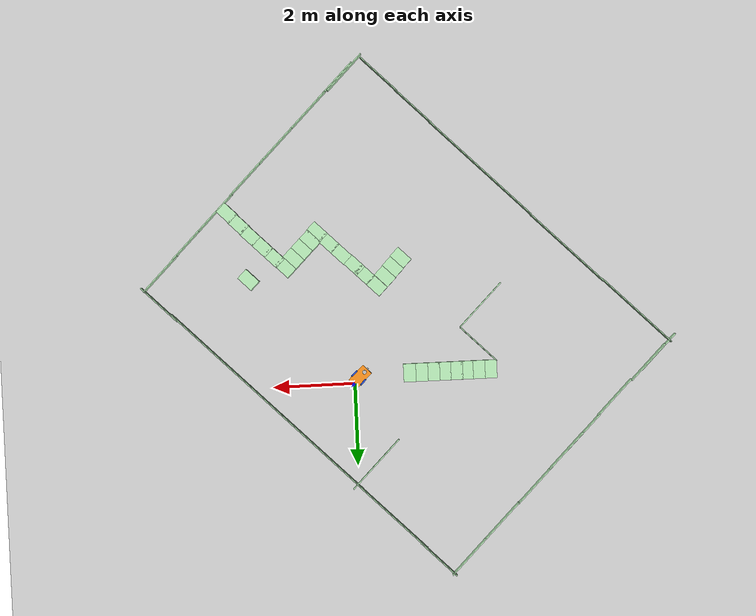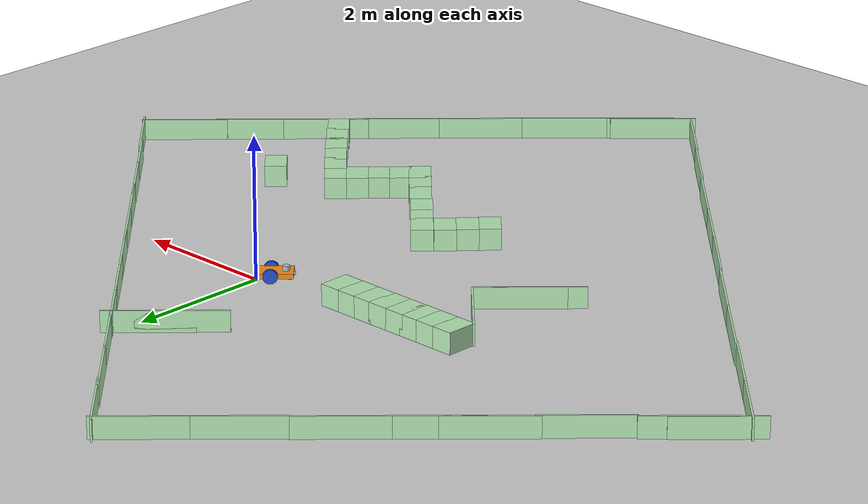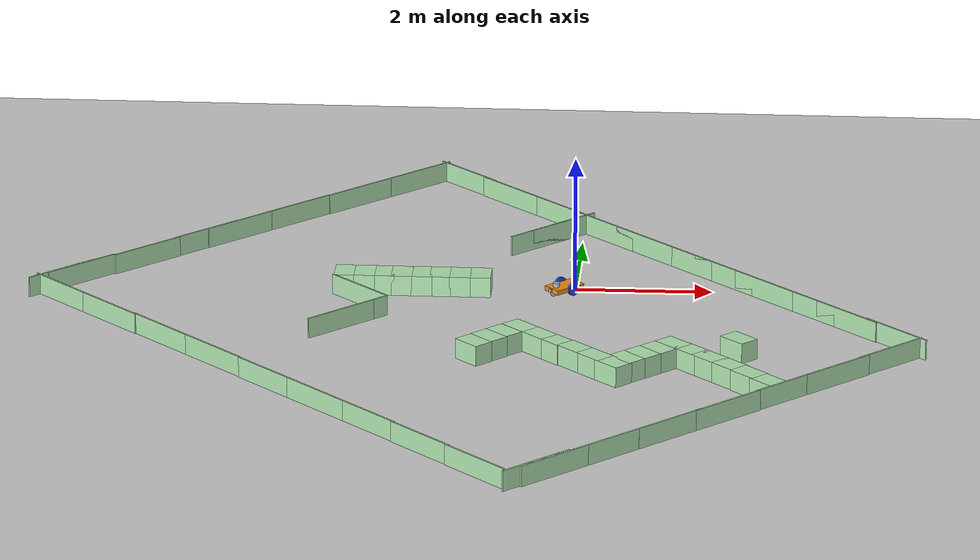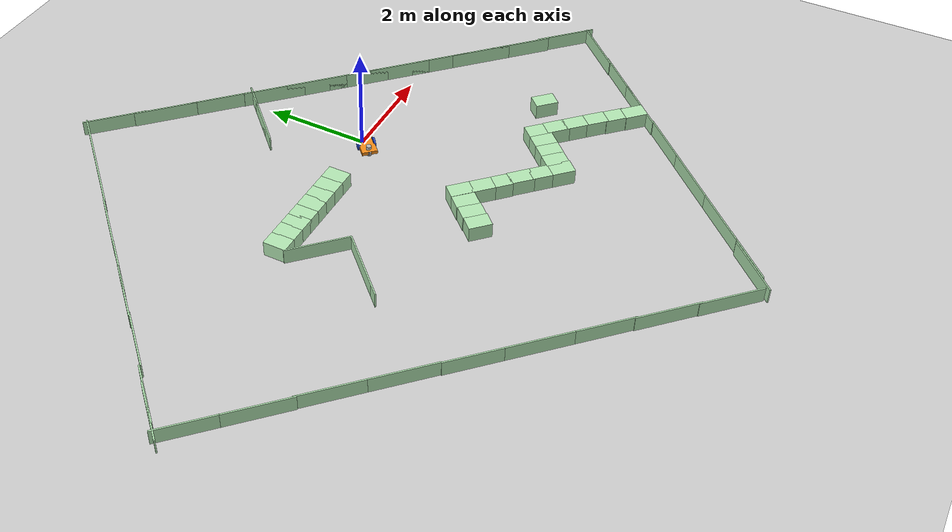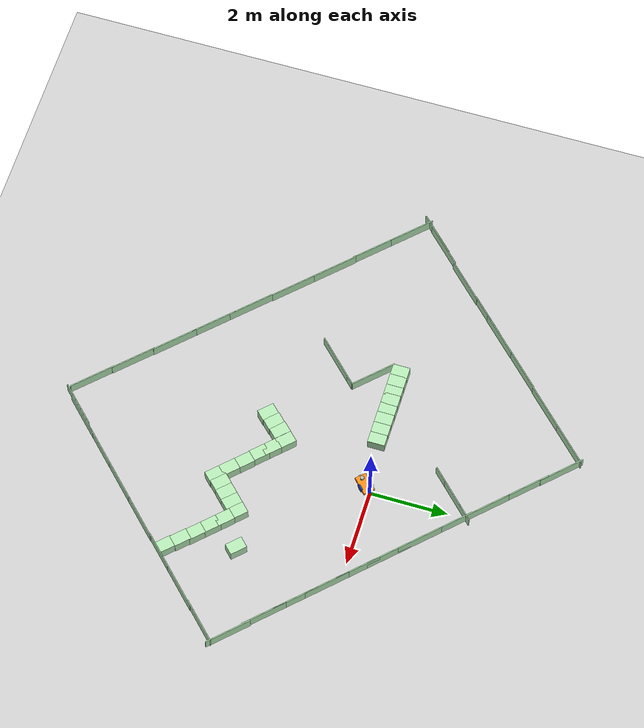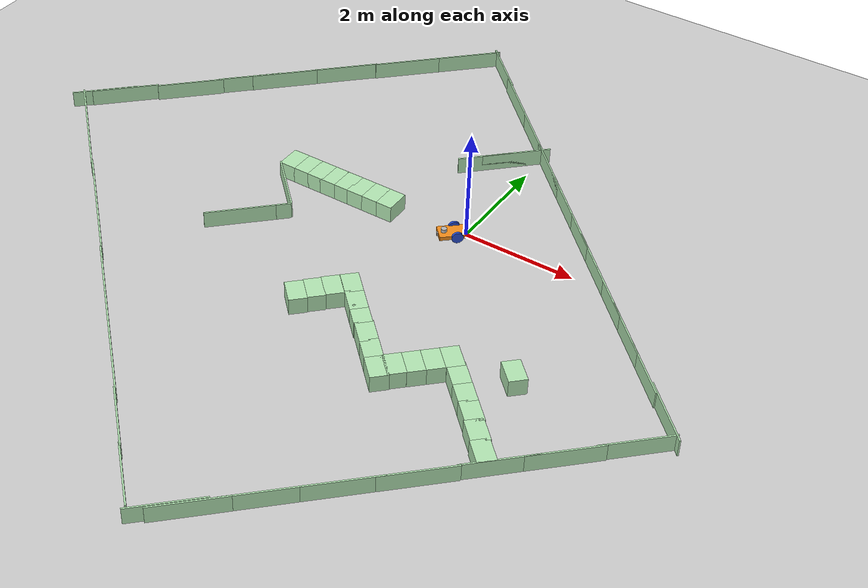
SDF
<sdf version="1.6">
 <world name="default">
  <scene><ambient>0.5 0.5 0.5 1</ambient><background>0.5 0.5 0.5 1</background><shadows>0</shadows></scene>
  <physics name="default_physics" default="0" type="ode">
   <ode>
    <solver>
     <type>quick</type>
     <iters>10</iters>
     <sor>1.3</sor>
     <use_dynamic_moi_rescaling>0</use_dynamic_moi_rescaling>
    </solver>
    <constraints>
     <cfm>0</cfm>
     <erp>0.2</erp>
     <contact_max_correcting_vel>100</contact_max_correcting_vel>
     <contact_surface_layer>0.001</contact_surface_layer>
    </constraints>
   </ode>
   <real_time_update_rate>1000</real_time_update_rate>
   <max_step_size>0.001</max_step_size>
   <real_time_factor>1</real_time_factor>
  </physics>
  <light name="directional_light_1" type="directional">
   <cast_shadows>0</cast_shadows>
   <pose>0 0 30 0.1 0.1 0</pose>
   <diffuse>1 1 1 1</diffuse>
   <specular>0.1 0.1 0.1 1</specular>
   <attenuation><range>300</range></attenuation>
   <direction>0.1 0.1 -1</direction>
  </light>
  <model name="ground_plane">
   <static>1</static>
   <link name="link">
    <collision name="collision">
     <geometry><plane><normal>0 0 1</normal><size>100 100</size></plane></geometry>
     <surface><friction><ode><mu>100</mu><mu2>50</mu2></ode></friction></surface>
    </collision>
    <visual name="visual">
     <cast_shadows>0</cast_shadows>
     <geometry><plane><normal>0 0 1</normal><size>100 100</size></plane></geometry>
     <material>
      <script><uri>file://media/materials/scripts/gazebo.material</uri><name>Gazebo/Grey</name></script>
     </material>
    </visual>
   </link>
  </model>
  <model name="wall_1">
   <pose>2.82826 -6.85801 0 0 -0 0</pose>
   <static>1</static>
   <link name="wall_1_link">
    <pose>-3.78491 -0.73691 0.15 0 -0 0.785398</pose>
    <collision name="wall_1_collision"><geometry><box><size>0.0254 1.2192 0.3</size></box></geometry></collision>
    <visual name="wall_1_visual">
     <geometry><box><size>0.0254 1.2192 0.3</size></box></geometry>
     <material>
      <ambient>0.7 0.9 0.7 1</ambient>
      <diffuse>0.7 0.9 0.7 1</diffuse>
      <specular>0.1 0.1 0.1 1</specular>
      <emissive>0 0 0 0</emissive>
     </material>
    </visual>
   </link>
  </model>
  <model name="wall_2">
   <pose>0.99822 6.04473 0 0 -0 0</pose>
   <static>1</static>
   <link name="wall_2_link">
    <pose>-2.87051 -1.65131 0.15 0 -0 0.785398</pose>
    <collision name="wall_2_collision"><geometry><box><size>0.0254 1.2192 0.3</size></box></geometry></collision>
    <visual name="wall_2_visual">
     <geometry><box><size>0.0254 1.2192 0.3</size></box></geometry>
     <material>
      <ambient>0.7 0.9 0.7 1</ambient>
      <diffuse>0.7 0.9 0.7 1</diffuse>
      <specular>0.1 0.1 0.1 1</specular>
      <emissive>0 0 0 0</emissive>
     </material>
    </visual>
   </link>
  </model>
  <model name="wall_3">
   <pose>1.07216 5.95222 0 0 -0 0</pose>
   <static>1</static>
   <link name="wall_3_link">
    <pose>-2.26091 -2.26091 0.15 0 -0 0.785398</pose>
    <collision name="wall_3_collision"><geometry><box><size>0.0254 1.2192 0.3</size></box></geometry></collision>
    <visual name="wall_3_visual">
     <geometry><box><size>0.0254 1.2192 0.3</size></box></geometry>
     <material>
      <ambient>0.7 0.9 0.7 1</ambient>
      <diffuse>0.7 0.9 0.7 1</diffuse>
      <specular>0.1 0.1 0.1 1</specular>
      <emissive>0 0 0 0</emissive>
     </material>
    </visual>
   </link>
  </model>
  <model name="wall_4">
   <pose>1.25702 5.76744 0 0 -0 0</pose>
   <static>1</static>
   <link name="wall_4_link">
    <pose>-1.65131 -2.87051 0.15 0 -0 0.785398</pose>
    <collision name="wall_4_collision"><geometry><box><size>0.0254 1.2192 0.3</size></box></geometry></collision>
    <visual name="wall_4_visual">
     <geometry><box><size>0.0254 1.2192 0.3</size></box></geometry>
     <material>
      <ambient>0.7 0.9 0.7 1</ambient>
      <diffuse>0.7 0.9 0.7 1</diffuse>
      <specular>0.1 0.1 0.1 1</specular>
      <emissive>0 0 0 0</emissive>
     </material>
    </visual>
   </link>
  </model>
  <model name="wall_5">
   <pose>-3.4383 5.67497 0 0 -0 0</pose>
   <static>1</static>
   <link name="wall_5_link">
    <pose>-1.6941 -3.7923 0.15 0 0 -0.785398</pose>
    <collision name="wall_5_collision"><geometry><box><size>0.0254 1.2192 0.3</size></box></geometry></collision>
    <visual name="wall_5_visual">
     <geometry><box><size>0.0254 1.2192 0.3</size></box></geometry>
     <material>
      <ambient>0.7 0.9 0.7 1</ambient>
      <diffuse>0.7 0.9 0.7 1</diffuse>
      <specular>0.1 0.1 0.1 1</specular>
      <emissive>0 0 0 0</emissive>
     </material>
    </visual>
   </link>
  </model>
  <model name="wall_6">
   <pose>6.22957 -4.01132 0 0 -0 0</pose>
   <static>1</static>
   <link name="wall_6_link">
    <pose>-1.524 1.8288 0.15 0 -0 0.785398</pose>
    <collision name="wall_6_collision"><geometry><box><size>0.0254 1.2192 0.3</size></box></geometry></collision>
    <visual name="wall_6_visual">
     <geometry><box><size>0.0254 1.2192 0.3</size></box></geometry>
     <material>
      <ambient>0.7 0.9 0.7 1</ambient>
      <diffuse>0.7 0.9 0.7 1</diffuse>
      <specular>0.1 0.1 0.1 1</specular>
      <emissive>0 0 0 0</emissive>
     </material>
    </visual>
   </link>
  </model>
  <model name="wall_7">
   <static>1</static>
   <link name="wall_7_link">
    <pose>0.332269 2.16107 0.15 0 -0 0.785398</pose>
    <collision name="wall_7_collision"><geometry><box><size>0.0254 1.2192 0.3</size></box></geometry></collision>
    <visual name="wall_7_visual">
     <geometry><box><size>0.0254 1.2192 0.3</size></box></geometry>
     <material>
      <ambient>0.7 0.9 0.7 1</ambient>
      <diffuse>0.7 0.9 0.7 1</diffuse>
      <specular>0.1 0.1 0.1 1</specular>
      <emissive>0 0 0 0</emissive>
     </material>
    </visual>
   </link>
  </model>
  <model name="wall_8">
   <static>1</static>
   <link name="wall_8_link">
    <pose>0.941869 1.55147 0.15 0 -0 0.785398</pose>
    <collision name="wall_8_collision"><geometry><box><size>0.0254 1.2192 0.3</size></box></geometry></collision>
    <visual name="wall_8_visual">
     <geometry><box><size>0.0254 1.2192 0.3</size></box></geometry>
     <material>
      <ambient>0.7 0.9 0.7 1</ambient>
      <diffuse>0.7 0.9 0.7 1</diffuse>
      <specular>0.1 0.1 0.1 1</specular>
      <emissive>0 0 0 0</emissive>
     </material>
    </visual>
   </link>
  </model>
  <model name="wall_9">
   <static>1</static>
   <link name="wall_9_link">
    <pose>1.55147 0.941869 0.15 0 -0 0.785398</pose>
    <collision name="wall_9_collision"><geometry><box><size>0.0254 1.2192 0.3</size></box></geometry></collision>
    <visual name="wall_9_visual">
     <geometry><box><size>0.0254 1.2192 0.3</size></box></geometry>
     <material>
      <ambient>0.7 0.9 0.7 1</ambient>
      <diffuse>0.7 0.9 0.7 1</diffuse>
      <specular>0.1 0.1 0.1 1</specular>
      <emissive>0 0 0 0</emissive>
     </material>
    </visual>
   </link>
  </model>
  <model name="wall_10">
   <static>1</static>
   <link name="wall_10_link">
    <pose>2.16107 0.332269 0.15 0 -0 0.785398</pose>
    <collision name="wall_10_collision"><geometry><box><size>0.0254 1.2192 0.3</size></box></geometry></collision>
    <visual name="wall_10_visual">
     <geometry><box><size>0.0254 1.2192 0.3</size></box></geometry>
     <material>
      <ambient>0.7 0.9 0.7 1</ambient>
      <diffuse>0.7 0.9 0.7 1</diffuse>
      <specular>0.1 0.1 0.1 1</specular>
      <emissive>0 0 0 0</emissive>
     </material>
    </visual>
   </link>
  </model>
  <model name="wall_11">
   <static>1</static>
   <link name="wall_11_link">
    <pose>2.77067 -0.277331 0.15 0 -0 0.785398</pose>
    <collision name="wall_11_collision"><geometry><box><size>0.0254 1.2192 0.3</size></box></geometry></collision>
    <visual name="wall_11_visual">
     <geometry><box><size>0.0254 1.2192 0.3</size></box></geometry>
     <material>
      <ambient>0.7 0.9 0.7 1</ambient>
      <diffuse>0.7 0.9 0.7 1</diffuse>
      <specular>0.1 0.1 0.1 1</specular>
      <emissive>0 0 0 0</emissive>
     </material>
    </visual>
   </link>
  </model>
  <model name="wall_12">
   <static>1</static>
   <link name="wall_12_link">
    <pose>3.38027 -0.886931 0.15 0 -0 0.785398</pose>
    <collision name="wall_12_collision"><geometry><box><size>0.0254 1.2192 0.3</size></box></geometry></collision>
    <visual name="wall_12_visual">
     <geometry><box><size>0.0254 1.2192 0.3</size></box></geometry>
     <material>
      <ambient>0.7 0.9 0.7 1</ambient>
      <diffuse>0.7 0.9 0.7 1</diffuse>
      <specular>0.1 0.1 0.1 1</specular>
      <emissive>0 0 0 0</emissive>
     </material>
    </visual>
   </link>
  </model>
  <model name="wall_13">
   <static>1</static>
   <link name="wall_13_link">
    <pose>3.98987 -1.49653 0.15 0 -0 0.785398</pose>
    <collision name="wall_13_collision"><geometry><box><size>0.0254 1.2192 0.3</size></box></geometry></collision>
    <visual name="wall_13_visual">
     <geometry><box><size>0.0254 1.2192 0.3</size></box></geometry>
     <material>
      <ambient>0.7 0.9 0.7 1</ambient>
      <diffuse>0.7 0.9 0.7 1</diffuse>
      <specular>0.1 0.1 0.1 1</specular>
      <emissive>0 0 0 0</emissive>
     </material>
    </visual>
   </link>
  </model>
  <model name="wall_14">
   <pose>1.12166 -1.01977 0 0 -0 0</pose>
   <static>1</static>
   <link name="wall_14_link">
    <pose>-0.312194 -5.78381 0.15 0 0 -0.785398</pose>
    <collision name="wall_14_collision"><geometry><box><size>0.0254 1.2192 0.3</size></box></geometry></collision>
    <visual name="wall_14_visual">
     <geometry><box><size>0.0254 1.2192 0.3</size></box></geometry>
     <material>
      <ambient>0.7 0.9 0.7 1</ambient>
      <diffuse>0.7 0.9 0.7 1</diffuse>
      <specular>0.1 0.1 0.1 1</specular>
      <emissive>0 0 0 0</emissive>
     </material>
    </visual>
   </link>
  </model>
  <model name="wall_15">
   <pose>2.10733 -0.03697 0 0 -0 0</pose>
   <static>1</static>
   <link name="wall_15_link">
    <pose>0.297406 -5.17421 0.15 0 0 -0.785398</pose>
    <collision name="wall_15_collision"><geometry><box><size>0.0254 1.2192 0.3</size></box></geometry></collision>
    <visual name="wall_15_visual">
     <geometry><box><size>0.0254 1.2192 0.3</size></box></geometry>
     <material>
      <ambient>0.7 0.9 0.7 1</ambient>
      <diffuse>0.7 0.9 0.7 1</diffuse>
      <specular>0.1 0.1 0.1 1</specular>
      <emissive>0 0 0 0</emissive>
     </material>
    </visual>
   </link>
  </model>
  <model name="wall_16">
   <pose>2.31067 0.18486 0 0 -0 0</pose>
   <static>1</static>
   <link name="wall_16_link">
    <pose>0.907006 -4.56461 0.15 0 0 -0.785398</pose>
    <collision name="wall_16_collision"><geometry><box><size>0.0254 1.2192 0.3</size></box></geometry></collision>
    <visual name="wall_16_visual">
     <geometry><box><size>0.0254 1.2192 0.3</size></box></geometry>
     <material>
      <ambient>0.7 0.9 0.7 1</ambient>
      <diffuse>0.7 0.9 0.7 1</diffuse>
      <specular>0.1 0.1 0.1 1</specular>
      <emissive>0 0 0 0</emissive>
     </material>
    </visual>
   </link>
  </model>
  <model name="wall_17">
   <pose>2.38461 0.25879 0 0 -0 0</pose>
   <static>1</static>
   <link name="wall_17_link">
    <pose>1.51661 -3.95501 0.15 0 0 -0.785398</pose>
    <collision name="wall_17_collision"><geometry><box><size>0.0254 1.2192 0.3</size></box></geometry></collision>
    <visual name="wall_17_visual">
     <geometry><box><size>0.0254 1.2192 0.3</size></box></geometry>
     <material>
      <ambient>0.7 0.9 0.7 1</ambient>
      <diffuse>0.7 0.9 0.7 1</diffuse>
      <specular>0.1 0.1 0.1 1</specular>
      <emissive>0 0 0 0</emissive>
     </material>
    </visual>
   </link>
  </model>
  <model name="wall_18">
   <pose>-0.47618 -2.61811 0 0 -0 0</pose>
   <static>1</static>
   <link name="wall_18_link">
    <pose>2.12621 -3.34541 0.15 0 0 -0.785398</pose>
    <collision name="wall_18_collision"><geometry><box><size>0.0254 1.2192 0.3</size></box></geometry></collision>
    <visual name="wall_18_visual">
     <geometry><box><size>0.0254 1.2192 0.3</size></box></geometry>
     <material>
      <ambient>0.7 0.9 0.7 1</ambient>
      <diffuse>0.7 0.9 0.7 1</diffuse>
      <specular>0.1 0.1 0.1 1</specular>
      <emissive>0 0 0 0</emissive>
     </material>
    </visual>
   </link>
  </model>
  <model name="wall_19">
   <pose>1.90401 -0.20333 0 0 -0 0</pose>
   <static>1</static>
   <link name="wall_19_link">
    <pose>2.73581 -2.73581 0.15 0 0 -0.785398</pose>
    <collision name="wall_19_collision"><geometry><box><size>0.0254 1.2192 0.3</size></box></geometry></collision>
    <visual name="wall_19_visual">
     <geometry><box><size>0.0254 1.2192 0.3</size></box></geometry>
     <material>
      <ambient>0.7 0.9 0.7 1</ambient>
      <diffuse>0.7 0.9 0.7 1</diffuse>
      <specular>0.1 0.1 0.1 1</specular>
      <emissive>0 0 0 0</emissive>
     </material>
    </visual>
   </link>
  </model>
  <model name="wall_20">
   <pose>-8.92843 3.56765 0 0 -0 0</pose>
   <static>1</static>
   <link name="wall_20_link">
    <pose>3.34541 -2.12621 0.15 0 0 -0.785398</pose>
    <collision name="wall_20_collision"><geometry><box><size>0.0254 1.2192 0.3</size></box></geometry></collision>
    <visual name="wall_20_visual">
     <geometry><box><size>0.0254 1.2192 0.3</size></box></geometry>
     <material>
      <ambient>0.7 0.9 0.7 1</ambient>
      <diffuse>0.7 0.9 0.7 1</diffuse>
      <specular>0.1 0.1 0.1 1</specular>
      <emissive>0 0 0 0</emissive>
     </material>
    </visual>
   </link>
  </model>
  <model name="wall_21">
   <pose>-10.3334 2.14421 0 0 -0 0</pose>
   <static>1</static>
   <link name="wall_21_link">
    <pose>3.95501 -1.51661 0.15 0 0 -0.785398</pose>
    <collision name="wall_21_collision"><geometry><box><size>0.0254 1.2192 0.3</size></box></geometry></collision>
    <visual name="wall_21_visual">
     <geometry><box><size>0.0254 1.2192 0.3</size></box></geometry>
     <material>
      <ambient>0.7 0.9 0.7 1</ambient>
      <diffuse>0.7 0.9 0.7 1</diffuse>
      <specular>0.1 0.1 0.1 1</specular>
      <emissive>0 0 0 0</emissive>
     </material>
    </visual>
   </link>
  </model>
  <model name="wall_22">
   <static>1</static>
   <link name="wall_22_link">
    <pose>-0.29582 2.14258 0.15 0 0 -0.785398</pose>
    <collision name="wall_22_collision"><geometry><box><size>0.0254 1.2192 0.3</size></box></geometry></collision>
    <visual name="wall_22_visual">
     <geometry><box><size>0.0254 1.2192 0.3</size></box></geometry>
     <material>
      <ambient>0.7 0.9 0.7 1</ambient>
      <diffuse>0.7 0.9 0.7 1</diffuse>
      <specular>0.1 0.1 0.1 1</specular>
      <emissive>0 0 0 0</emissive>
     </material>
    </visual>
   </link>
  </model>
  <model name="wall_23">
   <static>1</static>
   <link name="wall_23_link">
    <pose>-0.60062 1.83778 0.15 0 0 -0.785398</pose>
    <collision name="wall_23_collision"><geometry><box><size>0.0254 1.2192 0.3</size></box></geometry></collision>
    <visual name="wall_23_visual">
     <geometry><box><size>0.0254 1.2192 0.3</size></box></geometry>
     <material>
      <ambient>0.7 0.9 0.7 1</ambient>
      <diffuse>0.7 0.9 0.7 1</diffuse>
      <specular>0.1 0.1 0.1 1</specular>
      <emissive>0 0 0 0</emissive>
     </material>
    </visual>
   </link>
  </model>
  <model name="wall_24">
   <pose>-0.79487 2.5325 0 0 -0 0</pose>
   <static>1</static>
   <link name="wall_24_link">
    <pose>-1.83778 1.83778 0.15 0 0 -0.785398</pose>
    <collision name="wall_24_collision"><geometry><box><size>0.0254 1.2192 0.3</size></box></geometry></collision>
    <visual name="wall_24_visual">
     <geometry><box><size>0.0254 1.2192 0.3</size></box></geometry>
     <material>
      <ambient>0.7 0.9 0.7 1</ambient>
      <diffuse>0.7 0.9 0.7 1</diffuse>
      <specular>0.1 0.1 0.1 1</specular>
      <emissive>0 0 0 0</emissive>
     </material>
    </visual>
   </link>
  </model>
  <model name="wall_25">
   <pose>-0.72093 2.60641 0 0 -0 0</pose>
   <static>1</static>
   <link name="wall_25_link">
    <pose>-2.75218 0.92338 0.15 0 0 -0.785398</pose>
    <collision name="wall_25_collision"><geometry><box><size>0.0254 1.2192 0.3</size></box></geometry></collision>
    <visual name="wall_25_visual">
     <geometry><box><size>0.0254 1.2192 0.3</size></box></geometry>
     <material>
      <ambient>0.7 0.9 0.7 1</ambient>
      <diffuse>0.7 0.9 0.7 1</diffuse>
      <specular>0.1 0.1 0.1 1</specular>
      <emissive>0 0 0 0</emissive>
     </material>
    </visual>
   </link>
  </model>
  <model name="wall_26">
   <pose>-0.66548 2.68039 0 0 -0 0</pose>
   <static>1</static>
   <link name="wall_26_link">
    <pose>-3.66658 0.00898 0.15 0 0 -0.785398</pose>
    <collision name="wall_26_collision"><geometry><box><size>0.0254 1.2192 0.3</size></box></geometry></collision>
    <visual name="wall_26_visual">
     <geometry><box><size>0.0254 1.2192 0.3</size></box></geometry>
     <material>
      <ambient>0.7 0.9 0.7 1</ambient>
      <diffuse>0.7 0.9 0.7 1</diffuse>
      <specular>0.1 0.1 0.1 1</specular>
      <emissive>0 0 0 0</emissive>
     </material>
    </visual>
   </link>
  </model>
  <model name="box_6">
   <static>1</static>
   <link name="box_6_link">
    <pose>2.47538 -2.6909 0.15 0 -0 0.785398</pose>
    <collision name="box_6_collision"><geometry><box><size>0.3048 0.4445 0.3</size></box></geometry></collision>
    <visual name="box_6_visual">
     <geometry><box><size>0.3048 0.4445 0.3</size></box></geometry>
     <material>
      <ambient>0.7 0.9 0.7 1</ambient>
      <diffuse>0.7 0.9 0.7 1</diffuse>
      <specular>0.1 0.1 0.1 1</specular>
      <emissive>0 0 0 0</emissive>
     </material>
    </visual>
   </link>
  </model>
  <model name="box_9">
   <static>1</static>
   <link name="box_9_link">
    <pose>-1.3716 -0.22225 0.15 0 -0 0</pose>
    <collision name="box_9_collision"><geometry><box><size>0.3048 0.4445 0.3</size></box></geometry></collision>
    <visual name="box_9_visual">
     <geometry><box><size>0.3048 0.4445 0.3</size></box></geometry>
     <material>
      <ambient>0.7 0.9 0.7 1</ambient>
      <diffuse>0.7 0.9 0.7 1</diffuse>
      <specular>0.1 0.1 0.1 1</specular>
      <emissive>0 0 0 0</emissive>
     </material>
    </visual>
   </link>
  </model>
  <gravity>0 0 -9.81</gravity>
  <magnetic_field>6e-06 2.3e-05 -4.2e-05</magnetic_field>
  <atmosphere type="adiabatic"/>
  <audio><device>default</device></audio>
  <spherical_coordinates>
   <surface_model>EARTH_WGS84</surface_model>
   <latitude_deg>0</latitude_deg>
   <longitude_deg>0</longitude_deg>
   <elevation>0</elevation>
   <heading_deg>0</heading_deg>
  </spherical_coordinates>
  <model name="m2wr">
   <link name="link_chassis">
    <inertial>
     <pose>0.025 0 0.091667 0 -0 0</pose>
     <mass>6.00001</mass>
     <inertia>
      <ixx>0.0616261</ixx>
      <ixy>0</ixy>
      <ixz>0.00625021</ixz>
      <iyy>0.147043</iyy>
      <iyz>0</iyz>
      <izz>0.14496</izz>
     </inertia>
    </inertial>
    <collision name="link_chassis_fixed_joint_lump__collision_chassis_collision">
     <geometry><box><size>0.5 0.3 0.07</size></box></geometry>
    </collision>
    <collision name="link_chassis_fixed_joint_lump__caster_front_collision_collision_1">
     <pose>0.35 0 -0.05 0 -0 0</pose>
     <geometry><sphere><radius>0.05</radius></sphere></geometry>
    </collision>
    <collision name="link_chassis_fixed_joint_lump__camera_link_collision_2">
     <pose>0.25 0 0 0 -0 0</pose>
     <geometry><box><size>0.05 0.05 0.05</size></box></geometry>
    </collision>
    <collision name="link_chassis_fixed_joint_lump__sensor_laser_collision_3">
     <pose>0.15 0 0.05 0 -0 0</pose>
     <geometry><cylinder><length>0.1</length><radius>0.05</radius></cylinder></geometry>
    </collision>
    <visual name="link_chassis_visual">
     <geometry><box><size>0.5 0.3 0.07</size></box></geometry>
     <material>
      <script><name>Gazebo/Orange</name><uri>file://media/materials/scripts/gazebo.material</uri></script>
     </material>
    </visual>
    <visual name="link_chassis_fixed_joint_lump__caster_front_visual_visual_1">
     <pose>0.2 0 -0.05 0 -0 0</pose>
     <geometry><sphere><radius>0.05</radius></sphere></geometry>
    </visual>
    <visual name="link_chassis_fixed_joint_lump__camera_link_visual_2">
     <pose>0.25 0 0 0 -0 0</pose>
     <geometry><box><size>0.05 0.05 0.05</size></box></geometry>
     <material><script><uri>__default__</uri><name>__default__</name></script></material>
    </visual>
    <visual name="link_chassis_fixed_joint_lump__sensor_laser_visual_3">
     <pose>0.15 0 0.05 0 -0 0</pose>
     <geometry><cylinder><length>0.1</length><radius>0.05</radius></cylinder></geometry>
     <material><script><uri>__default__</uri><name>__default__</name></script></material>
    </visual>
    <sensor name="camera1" type="depth">
     <update_rate>20</update_rate>
     <camera name="__default__">
      <horizontal_fov>1.0472</horizontal_fov>
      <image><width>640</width><height>480</height><format>R8G8B8</format></image>
      <clip><near>0.05</near><far>3</far></clip>
     </camera>
     <plugin name="camera_controller" filename="libgazebo_ros_openni_kinect.so">
      <baseline>0.2</baseline>
      <alwaysOn>1</alwaysOn>
      <updateRate>1.0</updateRate>
      <cameraName>camera1_ir</cameraName>
      <imageTopicName>/camera1/color/image_raw</imageTopicName>
      <cameraInfoTopicName>/camera1/color/camera_info</cameraInfoTopicName>
      <depthImageTopicName>/camera1/depth/image_raw</depthImageTopicName>
      <depthImageInfoTopicName>/camera1/depth/camera_info</depthImageInfoTopicName>
      <pointCloudTopicName>/camera1/depth/points</pointCloudTopicName>
      <frameName>camera_link</frameName>
      <pointCloudCutoff>0.5</pointCloudCutoff>
      <pointCloudCutoffMax>3.0</pointCloudCutoffMax>
      <distortionK1>0.00000001</distortionK1>
      <distortionK2>0.00000001</distortionK2>
      <distortionK3>0.00000001</distortionK3>
      <distortionT1>0.00000001</distortionT1>
      <distortionT2>0.00000001</distortionT2>
      <CxPrime>0</CxPrime>
      <Cx>0</Cx>
      <Cy>0</Cy>
      <focalLength>0</focalLength>
      <hackBaseline>0</hackBaseline>
      <robotNamespace>/</robotNamespace>
     </plugin>
     <pose>0.25 0 0 0 -0 0</pose>
    </sensor>
    <sensor name="head_hokuyo_sensor" type="ray">
     <visualize>0</visualize>
     <update_rate>20</update_rate>
     <ray>
      <scan>
       <horizontal>
        <samples>720</samples>
        <resolution>1</resolution>
        <min_angle>-3.14</min_angle>
        <max_angle>3.14</max_angle>
       </horizontal>
       <vertical><samples>1</samples><min_angle>0</min_angle><max_angle>0</max_angle></vertical>
      </scan>
      <range><min>0.1</min><max>10</max><resolution>0.01</resolution></range>
      <noise><type>gaussian</type><mean>0</mean><stddev>0.01</stddev></noise>
     </ray>
     <plugin name="gazebo_ros_head_hokuyo_controller" filename="libgazebo_ros_laser.so">
      <topicName>/m2wr/laser/scan</topicName>
      <frameName>sensor_laser</frameName>
      <robotNamespace>/</robotNamespace>
     </plugin>
     <pose>0.15 0 0.05 0 -0 0</pose>
    </sensor>
   </link>
   <link name="link_left_wheel">
    <pose>-0.05 -0.15 0 0 -0 0</pose>
    <inertial>
     <pose>0 0 0 -0 1.5707 1.5707</pose>
     <mass>0.2</mass>
     <inertia>
      <ixx>0.000526667</ixx>
      <ixy>0</ixy>
      <ixz>0</ixz>
      <iyy>0.000526667</iyy>
      <iyz>0</iyz>
      <izz>0.001</izz>
     </inertia>
    </inertial>
    <collision name="link_left_wheel_collision_collision">
     <pose>0 0 0 3.14159 1.57079 -1.57089</pose>
     <geometry><cylinder><length>0.04</length><radius>0.1</radius></cylinder></geometry>
    </collision>
    <visual name="link_left_wheel_visual_visual">
     <pose>0 0 0 3.14159 1.57079 -1.57089</pose>
     <geometry><cylinder><length>0.04</length><radius>0.1</radius></cylinder></geometry>
     <material>
      <script><name>Gazebo/Blue</name><uri>file://media/materials/scripts/gazebo.material</uri></script>
     </material>
    </visual>
   </link>
   <joint name="joint_left_wheel" type="revolute">
    <child>link_left_wheel</child>
    <parent>link_chassis</parent>
    <axis>
     <xyz>0 1 0</xyz>
     <limit><lower>-1e+16</lower><upper>1e+16</upper></limit>
     <dynamics><spring_reference>0</spring_reference><spring_stiffness>0</spring_stiffness></dynamics>
     <use_parent_model_frame>1</use_parent_model_frame>
    </axis>
   </joint>
   <link name="link_right_wheel">
    <pose>-0.05 0.15 0 0 -0 0</pose>
    <inertial>
     <pose>0 0 0 -0 1.5707 1.5707</pose>
     <mass>0.2</mass>
     <inertia>
      <ixx>0.000526667</ixx>
      <ixy>0</ixy>
      <ixz>0</ixz>
      <iyy>0.000526667</iyy>
      <iyz>0</iyz>
      <izz>0.001</izz>
     </inertia>
    </inertial>
    <collision name="link_right_wheel_collision_collision">
     <pose>0 0 0 3.14159 1.57079 -1.57089</pose>
     <geometry><cylinder><length>0.04</length><radius>0.1</radius></cylinder></geometry>
    </collision>
    <visual name="link_right_wheel_visual_visual">
     <pose>0 0 0 3.14159 1.57079 -1.57089</pose>
     <geometry><cylinder><length>0.04</length><radius>0.1</radius></cylinder></geometry>
     <material>
      <script><name>Gazebo/Blue</name><uri>file://media/materials/scripts/gazebo.material</uri></script>
     </material>
    </visual>
   </link>
   <joint name="joint_right_wheel" type="revolute">
    <child>link_right_wheel</child>
    <parent>link_chassis</parent>
    <axis>
     <xyz>0 1 0</xyz>
     <limit><lower>-1e+16</lower><upper>1e+16</upper></limit>
     <dynamics><spring_reference>0</spring_reference><spring_stiffness>0</spring_stiffness></dynamics>
     <use_parent_model_frame>1</use_parent_model_frame>
    </axis>
   </joint>
   <static>0</static>
   <plugin name="differential_drive_controller" filename="libgazebo_ros_diff_drive.so">
    <alwaysOn>1</alwaysOn>
    <updateRate>20</updateRate>
    <leftJoint>joint_left_wheel</leftJoint>
    <rightJoint>joint_right_wheel</rightJoint>
    <wheelSeparation>0.4</wheelSeparation>
    <wheelDiameter>0.2</wheelDiameter>
    <torque>0.1</torque>
    <commandTopic>cmd_vel</commandTopic>
    <odometryTopic>odom</odometryTopic>
    <odometryFrame>odom</odometryFrame>
    <robotBaseFrame>link_chassis</robotBaseFrame>
    <robotNamespace>/</robotNamespace>
   </plugin>
   <pose>-0.152687 -0.183987 0.099988 -2e-05 -0.002746 -2.38609</pose>
  </model>
  <model name="wall_1_clone">
   <static>1</static>
   <link name="wall_1_link">
    <pose>-3.78491 -0.73691 0.15 0 -0 0.785398</pose>
    <collision name="wall_1_collision"><geometry><box><size>0.0254 1.2192 0.3</size></box></geometry></collision>
    <visual name="wall_1_visual">
     <geometry><box><size>0.0254 1.2192 0.3</size></box></geometry>
     <material>
      <ambient>0.7 0.9 0.7 1</ambient>
      <diffuse>0.7 0.9 0.7 1</diffuse>
      <specular>0.1 0.1 0.1 1</specular>
      <emissive>0 0 0 0</emissive>
     </material>
    </visual>
   </link>
   <pose>2.02356 -6.03636 0 0 -0 0</pose>
  </model>
  <model name="wall_1_clone_0">
   <static>1</static>
   <link name="wall_1_link">
    <pose>-3.78491 -0.73691 0.15 0 -0 0.785398</pose>
    <collision name="wall_1_collision"><geometry><box><size>0.0254 1.2192 0.3</size></box></geometry></collision>
    <visual name="wall_1_visual">
     <geometry><box><size>0.0254 1.2192 0.3</size></box></geometry>
     <material>
      <ambient>0.7 0.9 0.7 1</ambient>
      <diffuse>0.7 0.9 0.7 1</diffuse>
      <specular>0.1 0.1 0.1 1</specular>
      <emissive>0 0 0 0</emissive>
     </material>
    </visual>
   </link>
   <pose>1.21021 -5.20447 0 0 -0 0</pose>
  </model>
  <model name="wall_1_clone_1">
   <static>1</static>
   <link name="wall_1_link">
    <pose>-3.78491 -0.73691 0.15 0 -0 0.785398</pose>
    <collision name="wall_1_collision"><geometry><box><size>0.0254 1.2192 0.3</size></box></geometry></collision>
    <visual name="wall_1_visual">
     <geometry><box><size>0.0254 1.2192 0.3</size></box></geometry>
     <material>
      <ambient>0.7 0.9 0.7 1</ambient>
      <diffuse>0.7 0.9 0.7 1</diffuse>
      <specular>0.1 0.1 0.1 1</specular>
      <emissive>0 0 0 0</emissive>
     </material>
    </visual>
   </link>
   <pose>0.43382 -4.42813 0 0 -0 0</pose>
  </model>
  <model name="wall_1_clone_2">
   <static>1</static>
   <link name="wall_1_link">
    <pose>-3.78491 -0.73691 0.15 0 -0 0.785398</pose>
    <collision name="wall_1_collision"><geometry><box><size>0.0254 1.2192 0.3</size></box></geometry></collision>
    <visual name="wall_1_visual">
     <geometry><box><size>0.0254 1.2192 0.3</size></box></geometry>
     <material>
      <ambient>0.7 0.9 0.7 1</ambient>
      <diffuse>0.7 0.9 0.7 1</diffuse>
      <specular>0.1 0.1 0.1 1</specular>
      <emissive>0 0 0 0</emissive>
     </material>
    </visual>
   </link>
   <pose>-0.32407 -3.66988 0 0 -0 0</pose>
  </model>
  <model name="wall_1_clone_3">
   <static>1</static>
   <link name="wall_1_link">
    <pose>-3.78491 -0.73691 0.15 0 -0 0.785398</pose>
    <collision name="wall_1_collision"><geometry><box><size>0.0254 1.2192 0.3</size></box></geometry></collision>
    <visual name="wall_1_visual">
     <geometry><box><size>0.0254 1.2192 0.3</size></box></geometry>
     <material>
      <ambient>0.7 0.9 0.7 1</ambient>
      <diffuse>0.7 0.9 0.7 1</diffuse>
      <specular>0.1 0.1 0.1 1</specular>
      <emissive>0 0 0 0</emissive>
     </material>
    </visual>
   </link>
   <pose>-1.17436 -2.8011 0 0 -0 0</pose>
  </model>
  <model name="wall_1_clone_4">
   <static>1</static>
   <link name="wall_1_link">
    <pose>-3.78491 -0.73691 0.15 0 -0 0.785398</pose>
    <collision name="wall_1_collision"><geometry><box><size>0.0254 1.2192 0.3</size></box></geometry></collision>
    <visual name="wall_1_visual">
     <geometry><box><size>0.0254 1.2192 0.3</size></box></geometry>
     <material>
      <ambient>0.7 0.9 0.7 1</ambient>
      <diffuse>0.7 0.9 0.7 1</diffuse>
      <specular>0.1 0.1 0.1 1</specular>
      <emissive>0 0 0 0</emissive>
     </material>
    </visual>
   </link>
   <pose>-2.02469 -1.95074 0 0 -0 0</pose>
  </model>
  <model name="wall_1_clone_5">
   <static>1</static>
   <link name="wall_1_link">
    <pose>-3.78491 -0.73691 0.15 0 -0 0.785398</pose>
    <collision name="wall_1_collision"><geometry><box><size>0.0254 1.2192 0.3</size></box></geometry></collision>
    <visual name="wall_1_visual">
     <geometry><box><size>0.0254 1.2192 0.3</size></box></geometry>
     <material>
      <ambient>0.7 0.9 0.7 1</ambient>
      <diffuse>0.7 0.9 0.7 1</diffuse>
      <specular>0.1 0.1 0.1 1</specular>
      <emissive>0 0 0 0</emissive>
     </material>
    </visual>
   </link>
   <pose>-2.85206 -1.14339 0 0 -0 0</pose>
  </model>
  <model name="wall_1_clone_6">
   <static>1</static>
   <link name="wall_1_link">
    <pose>-3.78491 -0.73691 0.15 0 -0 0.785398</pose>
    <collision name="wall_1_collision"><geometry><box><size>0.0254 1.2192 0.3</size></box></geometry></collision>
    <visual name="wall_1_visual">
     <geometry><box><size>0.0254 1.2192 0.3</size></box></geometry>
     <material>
      <ambient>0.7 0.9 0.7 1</ambient>
      <diffuse>0.7 0.9 0.7 1</diffuse>
      <specular>0.1 0.1 0.1 1</specular>
      <emissive>0 0 0 0</emissive>
     </material>
    </visual>
   </link>
   <pose>-3.62833 -0.36701 0 0 -0 0</pose>
  </model>
  <model name="wall_21_clone">
   <static>1</static>
   <link name="wall_21_link">
    <pose>3.95501 -1.51661 0.15 0 0 -0.785398</pose>
    <collision name="wall_21_collision"><geometry><box><size>0.0254 1.2192 0.3</size></box></geometry></collision>
    <visual name="wall_21_visual">
     <geometry><box><size>0.0254 1.2192 0.3</size></box></geometry>
     <material>
      <ambient>0.7 0.9 0.7 1</ambient>
      <diffuse>0.7 0.9 0.7 1</diffuse>
      <specular>0.1 0.1 0.1 1</specular>
      <emissive>0 0 0 0</emissive>
     </material>
    </visual>
   </link>
   <pose>-11.2069 1.3152 0 0 -0 0</pose>
  </model>
  <model name="wall_21_clone_0">
   <static>1</static>
   <link name="wall_21_link">
    <pose>3.95501 -1.51661 0.15 0 0 -0.785398</pose>
    <collision name="wall_21_collision"><geometry><box><size>0.0254 1.2192 0.3</size></box></geometry></collision>
    <visual name="wall_21_visual">
     <geometry><box><size>0.0254 1.2192 0.3</size></box></geometry>
     <material>
      <ambient>0.7 0.9 0.7 1</ambient>
      <diffuse>0.7 0.9 0.7 1</diffuse>
      <specular>0.1 0.1 0.1 1</specular>
      <emissive>0 0 0 0</emissive>
     </material>
    </visual>
   </link>
   <pose>-11.4657 1.07488 0 0 -0 0</pose>
  </model>
  <model name="wall_21_clone_1">
   <static>1</static>
   <link name="wall_21_link">
    <pose>3.95501 -1.51661 0.15 0 0 -0.785398</pose>
    <collision name="wall_21_collision"><geometry><box><size>0.0254 1.2192 0.3</size></box></geometry></collision>
    <visual name="wall_21_visual">
     <geometry><box><size>0.0254 1.2192 0.3</size></box></geometry>
     <material>
      <ambient>0.7 0.9 0.7 1</ambient>
      <diffuse>0.7 0.9 0.7 1</diffuse>
      <specular>0.1 0.1 0.1 1</specular>
      <emissive>0 0 0 0</emissive>
     </material>
    </visual>
   </link>
   <pose>-3.8277 -5.97248 0 0 -0 0</pose>
  </model>
  <model name="wall_21_clone_2">
   <static>1</static>
   <link name="wall_21_link">
    <pose>3.95501 -1.51661 0.15 0 0 -0.785398</pose>
    <collision name="wall_21_collision"><geometry><box><size>0.0254 1.2192 0.3</size></box></geometry></collision>
    <visual name="wall_21_visual">
     <geometry><box><size>0.0254 1.2192 0.3</size></box></geometry>
     <material>
      <ambient>0.7 0.9 0.7 1</ambient>
      <diffuse>0.7 0.9 0.7 1</diffuse>
      <specular>0.1 0.1 0.1 1</specular>
      <emissive>0 0 0 0</emissive>
     </material>
    </visual>
   </link>
   <pose>-4.06496 -6.16228 0 0 -0 0</pose>
  </model>
  <model name="box_6_clone">
   <static>1</static>
   <link name="box_6_link">
    <pose>2.47538 -2.6909 0.15 0 -0 0.785398</pose>
    <collision name="box_6_collision"><geometry><box><size>0.3048 0.4445 0.3</size></box></geometry></collision>
    <visual name="box_6_visual">
     <geometry><box><size>0.3048 0.4445 0.3</size></box></geometry>
     <material>
      <ambient>0.7 0.9 0.7 1</ambient>
      <diffuse>0.7 0.9 0.7 1</diffuse>
      <specular>0.1 0.1 0.1 1</specular>
      <emissive>0 0 0 0</emissive>
     </material>
    </visual>
   </link>
   <pose>0.46397 -1.67035 0 0 -0 0</pose>
  </model>
  <model name="box_6_clone_0">
   <static>1</static>
   <link name="box_6_link">
    <pose>2.47538 -2.6909 0.15 0 -0 0.785398</pose>
    <collision name="box_6_collision"><geometry><box><size>0.3048 0.4445 0.3</size></box></geometry></collision>
    <visual name="box_6_visual">
     <geometry><box><size>0.3048 0.4445 0.3</size></box></geometry>
     <material>
      <ambient>0.7 0.9 0.7 1</ambient>
      <diffuse>0.7 0.9 0.7 1</diffuse>
      <specular>0.1 0.1 0.1 1</specular>
      <emissive>0 0 0 0</emissive>
     </material>
    </visual>
   </link>
   <pose>0.18668 -1.37457 0 0 -0 0</pose>
  </model>
  <model name="box_6_clone_1">
   <static>1</static>
   <link name="box_6_link">
    <pose>2.47538 -2.6909 0.15 0 -0 0.785398</pose>
    <collision name="box_6_collision"><geometry><box><size>0.3048 0.4445 0.3</size></box></geometry></collision>
    <visual name="box_6_visual">
     <geometry><box><size>0.3048 0.4445 0.3</size></box></geometry>
     <material>
      <ambient>0.7 0.9 0.7 1</ambient>
      <diffuse>0.7 0.9 0.7 1</diffuse>
      <specular>0.1 0.1 0.1 1</specular>
      <emissive>0 0 0 0</emissive>
     </material>
    </visual>
   </link>
   <pose>-0.08511 -1.08609 0 0 -0 0</pose>
  </model>
  <model name="box_6_clone_2">
   <static>1</static>
   <link name="box_6_link">
    <pose>2.47538 -2.6909 0.15 0 -0 0.785398</pose>
    <collision name="box_6_collision"><geometry><box><size>0.3048 0.4445 0.3</size></box></geometry></collision>
    <visual name="box_6_visual">
     <geometry><box><size>0.3048 0.4445 0.3</size></box></geometry>
     <material>
      <ambient>0.7 0.9 0.7 1</ambient>
      <diffuse>0.7 0.9 0.7 1</diffuse>
      <specular>0.1 0.1 0.1 1</specular>
      <emissive>0 0 0 0</emissive>
     </material>
    </visual>
   </link>
   <pose>-0.37907 -0.79212 0 0 -0 0</pose>
  </model>
  <model name="box_6_clone_3">
   <static>1</static>
   <link name="box_6_link">
    <pose>2.47538 -2.6909 0.15 0 -0 0.785398</pose>
    <collision name="box_6_collision"><geometry><box><size>0.3048 0.4445 0.3</size></box></geometry></collision>
    <visual name="box_6_visual">
     <geometry><box><size>0.3048 0.4445 0.3</size></box></geometry>
     <material>
      <ambient>0.7 0.9 0.7 1</ambient>
      <diffuse>0.7 0.9 0.7 1</diffuse>
      <specular>0.1 0.1 0.1 1</specular>
      <emissive>0 0 0 0</emissive>
     </material>
    </visual>
   </link>
   <pose>-0.64951 -0.52172 0 0 -0 0</pose>
  </model>
  <model name="box_6_clone_4">
   <static>1</static>
   <link name="box_6_link">
    <pose>2.47538 -2.6909 0.15 0 -0 0.785398</pose>
    <collision name="box_6_collision"><geometry><box><size>0.3048 0.4445 0.3</size></box></geometry></collision>
    <visual name="box_6_visual">
     <geometry><box><size>0.3048 0.4445 0.3</size></box></geometry>
     <material>
      <ambient>0.7 0.9 0.7 1</ambient>
      <diffuse>0.7 0.9 0.7 1</diffuse>
      <specular>0.1 0.1 0.1 1</specular>
      <emissive>0 0 0 0</emissive>
     </material>
    </visual>
   </link>
   <pose>-0.91995 -0.26303 0 0 -0 0</pose>
  </model>
  <model name="box_6_clone_5">
   <static>1</static>
   <link name="box_6_link">
    <pose>2.47538 -2.6909 0.15 0 -0 0.785398</pose>
    <collision name="box_6_collision"><geometry><box><size>0.3048 0.4445 0.3</size></box></geometry></collision>
    <visual name="box_6_visual">
     <geometry><box><size>0.3048 0.4445 0.3</size></box></geometry>
     <material>
      <ambient>0.7 0.9 0.7 1</ambient>
      <diffuse>0.7 0.9 0.7 1</diffuse>
      <specular>0.1 0.1 0.1 1</specular>
      <emissive>0 0 0 0</emissive>
     </material>
    </visual>
   </link>
   <pose>-1.13159 -0.47468 0 0 -0 0</pose>
  </model>
  <model name="box_6_clone_6">
   <static>1</static>
   <link name="box_6_link">
    <pose>2.47538 -2.6909 0.15 0 -0 0.785398</pose>
    <collision name="box_6_collision"><geometry><box><size>0.3048 0.4445 0.3</size></box></geometry></collision>
    <visual name="box_6_visual">
     <geometry><box><size>0.3048 0.4445 0.3</size></box></geometry>
     <material>
      <ambient>0.7 0.9 0.7 1</ambient>
      <diffuse>0.7 0.9 0.7 1</diffuse>
      <specular>0.1 0.1 0.1 1</specular>
      <emissive>0 0 0 0</emissive>
     </material>
    </visual>
   </link>
   <pose>-1.34322 -0.68634 0 0 -0 0</pose>
  </model>
  <model name="box_6_clone_7">
   <static>1</static>
   <link name="box_6_link">
    <pose>2.47538 -2.6909 0.15 0 -0 0.785398</pose>
    <collision name="box_6_collision"><geometry><box><size>0.3048 0.4445 0.3</size></box></geometry></collision>
    <visual name="box_6_visual">
     <geometry><box><size>0.3048 0.4445 0.3</size></box></geometry>
     <material>
      <ambient>0.7 0.9 0.7 1</ambient>
      <diffuse>0.7 0.9 0.7 1</diffuse>
      <specular>0.1 0.1 0.1 1</specular>
      <emissive>0 0 0 0</emissive>
     </material>
    </visual>
   </link>
   <pose>-1.55344 -0.89289 0 0 -0 0</pose>
  </model>
  <model name="box_6_clone_8">
   <static>1</static>
   <link name="box_6_link">
    <pose>2.47538 -2.6909 0.15 0 -0 0.785398</pose>
    <collision name="box_6_collision"><geometry><box><size>0.3048 0.4445 0.3</size></box></geometry></collision>
    <visual name="box_6_visual">
     <geometry><box><size>0.3048 0.4445 0.3</size></box></geometry>
     <material>
      <ambient>0.7 0.9 0.7 1</ambient>
      <diffuse>0.7 0.9 0.7 1</diffuse>
      <specular>0.1 0.1 0.1 1</specular>
      <emissive>0 0 0 0</emissive>
     </material>
    </visual>
   </link>
   <pose>-1.73567 -1.09334 0 0 -0 0</pose>
  </model>
  <model name="box_6_clone_9">
   <static>1</static>
   <link name="box_6_link">
    <pose>2.47538 -2.6909 0.15 0 -0 0.785398</pose>
    <collision name="box_6_collision"><geometry><box><size>0.3048 0.4445 0.3</size></box></geometry></collision>
    <visual name="box_6_visual">
     <geometry><box><size>0.3048 0.4445 0.3</size></box></geometry>
     <material>
      <ambient>0.7 0.9 0.7 1</ambient>
      <diffuse>0.7 0.9 0.7 1</diffuse>
      <specular>0.1 0.1 0.1 1</specular>
      <emissive>0 0 0 0</emissive>
     </material>
    </visual>
   </link>
   <pose>-2.00896 -0.82 0 0 -0 0</pose>
  </model>
  <model name="box_6_clone_10">
   <static>1</static>
   <link name="box_6_link">
    <pose>2.47538 -2.6909 0.15 0 -0 0.785398</pose>
    <collision name="box_6_collision"><geometry><box><size>0.3048 0.4445 0.3</size></box></geometry></collision>
    <visual name="box_6_visual">
     <geometry><box><size>0.3048 0.4445 0.3</size></box></geometry>
     <material>
      <ambient>0.7 0.9 0.7 1</ambient>
      <diffuse>0.7 0.9 0.7 1</diffuse>
      <specular>0.1 0.1 0.1 1</specular>
      <emissive>0 0 0 0</emissive>
     </material>
    </visual>
   </link>
   <pose>-2.30052 -0.52848 0 0 -0 0</pose>
  </model>
  <model name="box_6_clone_11">
   <static>1</static>
   <link name="box_6_link">
    <pose>2.47538 -2.6909 0.15 0 -0 0.785398</pose>
    <collision name="box_6_collision"><geometry><box><size>0.3048 0.4445 0.3</size></box></geometry></collision>
    <visual name="box_6_visual">
     <geometry><box><size>0.3048 0.4445 0.3</size></box></geometry>
     <material>
      <ambient>0.7 0.9 0.7 1</ambient>
      <diffuse>0.7 0.9 0.7 1</diffuse>
      <specular>0.1 0.1 0.1 1</specular>
      <emissive>0 0 0 0</emissive>
     </material>
    </visual>
   </link>
   <pose>-2.61027 -0.23692 0 0 -0 0</pose>
  </model>
  <model name="box_6_clone_12">
   <static>1</static>
   <link name="box_6_link">
    <pose>2.47538 -2.6909 0.15 0 -0 0.785398</pose>
    <collision name="box_6_collision"><geometry><box><size>0.3048 0.4445 0.3</size></box></geometry></collision>
    <visual name="box_6_visual">
     <geometry><box><size>0.3048 0.4445 0.3</size></box></geometry>
     <material>
      <ambient>0.7 0.9 0.7 1</ambient>
      <diffuse>0.7 0.9 0.7 1</diffuse>
      <specular>0.1 0.1 0.1 1</specular>
      <emissive>0 0 0 0</emissive>
     </material>
    </visual>
   </link>
   <pose>-2.84716 -0.0001 0 0 -0 0</pose>
  </model>
  <model name="box_6_clone_13">
   <static>1</static>
   <link name="box_6_link">
    <pose>2.47538 -2.6909 0.15 0 -0 0.785398</pose>
    <collision name="box_6_collision"><geometry><box><size>0.3048 0.4445 0.3</size></box></geometry></collision>
    <visual name="box_6_visual">
     <geometry><box><size>0.3048 0.4445 0.3</size></box></geometry>
     <material>
      <ambient>0.7 0.9 0.7 1</ambient>
      <diffuse>0.7 0.9 0.7 1</diffuse>
      <specular>0.1 0.1 0.1 1</specular>
      <emissive>0 0 0 0</emissive>
     </material>
    </visual>
   </link>
   <pose>-3.13872 0.29146 0 0 -0 0</pose>
  </model>
  <model name="box_6_clone_14">
   <static>1</static>
   <link name="box_6_link">
    <pose>2.47538 -2.6909 0.15 0 -0 0.785398</pose>
    <collision name="box_6_collision"><geometry><box><size>0.3048 0.4445 0.3</size></box></geometry></collision>
    <visual name="box_6_visual">
     <geometry><box><size>0.3048 0.4445 0.3</size></box></geometry>
     <material>
      <ambient>0.7 0.9 0.7 1</ambient>
      <diffuse>0.7 0.9 0.7 1</diffuse>
      <specular>0.1 0.1 0.1 1</specular>
      <emissive>0 0 0 0</emissive>
     </material>
    </visual>
   </link>
   <pose>-3.35739 0.07279 0 0 -0 0</pose>
  </model>
  <model name="box_6_clone_15">
   <static>1</static>
   <link name="box_6_link">
    <pose>2.47538 -2.6909 0.15 0 -0 0.785398</pose>
    <collision name="box_6_collision"><geometry><box><size>0.3048 0.4445 0.3</size></box></geometry></collision>
    <visual name="box_6_visual">
     <geometry><box><size>0.3048 0.4445 0.3</size></box></geometry>
     <material>
      <ambient>0.7 0.9 0.7 1</ambient>
      <diffuse>0.7 0.9 0.7 1</diffuse>
      <specular>0.1 0.1 0.1 1</specular>
      <emissive>0 0 0 0</emissive>
     </material>
    </visual>
   </link>
   <pose>-3.5578 -0.14581 0 0 -0 0</pose>
  </model>
  <model name="box_6_clone_16">
   <static>1</static>
   <link name="box_6_link">
    <pose>2.47538 -2.6909 0.15 0 -0 0.785398</pose>
    <collision name="box_6_collision"><geometry><box><size>0.3048 0.4445 0.3</size></box></geometry></collision>
    <visual name="box_6_visual">
     <geometry><box><size>0.3048 0.4445 0.3</size></box></geometry>
     <material>
      <ambient>0.7 0.9 0.7 1</ambient>
      <diffuse>0.7 0.9 0.7 1</diffuse>
      <specular>0.1 0.1 0.1 1</specular>
      <emissive>0 0 0 0</emissive>
     </material>
    </visual>
   </link>
   <pose>-3.75825 -0.36448 0 0 -0 0</pose>
  </model>
  <model name="box_9_clone">
   <static>1</static>
   <link name="box_9_link">
    <pose>-1.3716 -0.22225 0.15 0 -0 0</pose>
    <collision name="box_9_collision"><geometry><box><size>0.3048 0.4445 0.3</size></box></geometry></collision>
    <visual name="box_9_visual">
     <geometry><box><size>0.3048 0.4445 0.3</size></box></geometry>
     <material>
      <ambient>0.7 0.9 0.7 1</ambient>
      <diffuse>0.7 0.9 0.7 1</diffuse>
      <specular>0.1 0.1 0.1 1</specular>
      <emissive>0 0 0 0</emissive>
     </material>
    </visual>
   </link>
   <pose>-0.29613 -0.000103 0 0 -0 0</pose>
  </model>
  <model name="box_9_clone_0">
   <static>1</static>
   <link name="box_9_link">
    <pose>-1.3716 -0.22225 0.15 0 -0 0</pose>
    <collision name="box_9_collision"><geometry><box><size>0.3048 0.4445 0.3</size></box></geometry></collision>
    <visual name="box_9_visual">
     <geometry><box><size>0.3048 0.4445 0.3</size></box></geometry>
     <material>
      <ambient>0.7 0.9 0.7 1</ambient>
      <diffuse>0.7 0.9 0.7 1</diffuse>
      <specular>0.1 0.1 0.1 1</specular>
      <emissive>0 0 0 0</emissive>
     </material>
    </visual>
   </link>
   <pose>-0.58769 -0.000103 0 0 -0 0</pose>
  </model>
  <model name="box_9_clone_1">
   <static>1</static>
   <link name="box_9_link">
    <pose>-1.3716 -0.22225 0.15 0 -0 0</pose>
    <collision name="box_9_collision"><geometry><box><size>0.3048 0.4445 0.3</size></box></geometry></collision>
    <visual name="box_9_visual">
     <geometry><box><size>0.3048 0.4445 0.3</size></box></geometry>
     <material>
      <ambient>0.7 0.9 0.7 1</ambient>
      <diffuse>0.7 0.9 0.7 1</diffuse>
      <specular>0.1 0.1 0.1 1</specular>
      <emissive>0 0 0 0</emissive>
     </material>
    </visual>
   </link>
   <pose>-0.86102 -0.000103 0 0 -0 0</pose>
  </model>
  <model name="box_9_clone_2">
   <static>1</static>
   <link name="box_9_link">
    <pose>-1.3716 -0.22225 0.15 0 -0 0</pose>
    <collision name="box_9_collision"><geometry><box><size>0.3048 0.4445 0.3</size></box></geometry></collision>
    <visual name="box_9_visual">
     <geometry><box><size>0.3048 0.4445 0.3</size></box></geometry>
     <material>
      <ambient>0.7 0.9 0.7 1</ambient>
      <diffuse>0.7 0.9 0.7 1</diffuse>
      <specular>0.1 0.1 0.1 1</specular>
      <emissive>0 0 0 0</emissive>
     </material>
    </visual>
   </link>
   <pose>-1.15254 -0.000103 0 0 -0 0</pose>
  </model>
  <model name="box_9_clone_3">
   <static>1</static>
   <link name="box_9_link">
    <pose>-1.3716 -0.22225 0.15 0 -0 0</pose>
    <collision name="box_9_collision"><geometry><box><size>0.3048 0.4445 0.3</size></box></geometry></collision>
    <visual name="box_9_visual">
     <geometry><box><size>0.3048 0.4445 0.3</size></box></geometry>
     <material>
      <ambient>0.7 0.9 0.7 1</ambient>
      <diffuse>0.7 0.9 0.7 1</diffuse>
      <specular>0.1 0.1 0.1 1</specular>
      <emissive>0 0 0 0</emissive>
     </material>
    </visual>
   </link>
   <pose>-1.40766 -0.000103 0 0 -0 0</pose>
  </model>
  <model name="box_9_clone_4">
   <static>1</static>
   <link name="box_9_link">
    <pose>-1.3716 -0.22225 0.15 0 -0 0</pose>
    <collision name="box_9_collision"><geometry><box><size>0.3048 0.4445 0.3</size></box></geometry></collision>
    <visual name="box_9_visual">
     <geometry><box><size>0.3048 0.4445 0.3</size></box></geometry>
     <material>
      <ambient>0.7 0.9 0.7 1</ambient>
      <diffuse>0.7 0.9 0.7 1</diffuse>
      <specular>0.1 0.1 0.1 1</specular>
      <emissive>0 0 0 0</emissive>
     </material>
    </visual>
   </link>
   <pose>-1.69922 -0.000103 0 0 -0 0</pose>
  </model>
  <model name="box_9_clone_5">
   <static>1</static>
   <link name="box_9_link">
    <pose>-1.3716 -0.22225 0.15 0 -0 0</pose>
    <collision name="box_9_collision"><geometry><box><size>0.3048 0.4445 0.3</size></box></geometry></collision>
    <visual name="box_9_visual">
     <geometry><box><size>0.3048 0.4445 0.3</size></box></geometry>
     <material>
      <ambient>0.7 0.9 0.7 1</ambient>
      <diffuse>0.7 0.9 0.7 1</diffuse>
      <specular>0.1 0.1 0.1 1</specular>
      <emissive>0 0 0 0</emissive>
     </material>
    </visual>
   </link>
   <pose>-1.99074 -0.000103 0 0 -0 0</pose>
  </model>
  <model name="wall_1_clone_5_clone">
   <static>1</static>
   <link name="wall_1_link">
    <pose>-3.78491 -0.73691 0.15 0 -0 0.785398</pose>
    <collision name="wall_1_collision"><geometry><box><size>0.0254 1.2192 0.3</size></box></geometry></collision>
    <visual name="wall_1_visual">
     <geometry><box><size>0.0254 1.2192 0.3</size></box></geometry>
     <material>
      <ambient>0.7 0.9 0.7 1</ambient>
      <diffuse>0.7 0.9 0.7 1</diffuse>
      <specular>0.1 0.1 0.1 1</specular>
      <emissive>0 0 0 0</emissive>
     </material>
    </visual>
   </link>
   <pose>0.68781 -0.109401 0 0 -0 0</pose>
  </model>
  <model name="wall_23_clone">
   <static>1</static>
   <link name="wall_23_link">
    <pose>-0.60062 1.83778 0.15 0 0 -0.785398</pose>
    <collision name="wall_23_collision"><geometry><box><size>0.0254 1.2192 0.3</size></box></geometry></collision>
    <visual name="wall_23_visual">
     <geometry><box><size>0.0254 1.2192 0.3</size></box></geometry>
     <material>
      <ambient>0.7 0.9 0.7 1</ambient>
      <diffuse>0.7 0.9 0.7 1</diffuse>
      <specular>0.1 0.1 0.1 1</specular>
      <emissive>0 0 0 0</emissive>
     </material>
    </visual>
   </link>
   <pose>-2.50101 -3.55334 0 0 -0 0</pose>
  </model>
  <model name="wall_23_clone_0">
   <static>1</static>
   <link name="wall_23_link">
    <pose>-0.60062 1.83778 0.15 0 0 -0.785398</pose>
    <collision name="wall_23_collision"><geometry><box><size>0.0254 1.2192 0.3</size></box></geometry></collision>
    <visual name="wall_23_visual">
     <geometry><box><size>0.0254 1.2192 0.3</size></box></geometry>
     <material>
      <ambient>0.7 0.9 0.7 1</ambient>
      <diffuse>0.7 0.9 0.7 1</diffuse>
      <specular>0.1 0.1 0.1 1</specular>
      <emissive>0 0 0 0</emissive>
     </material>
    </visual>
   </link>
   <pose>-2.6832 -3.73556 0 0 -0 0</pose>
  </model>
 </world>
</sdf>
